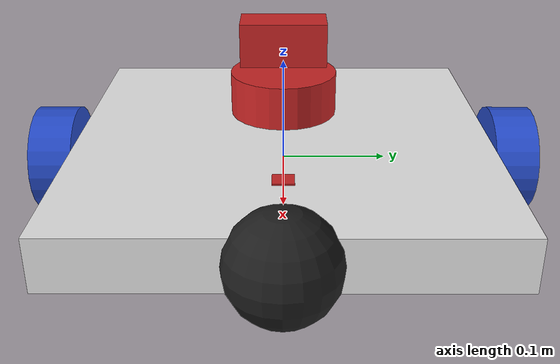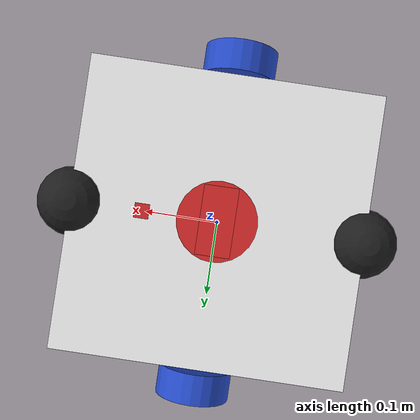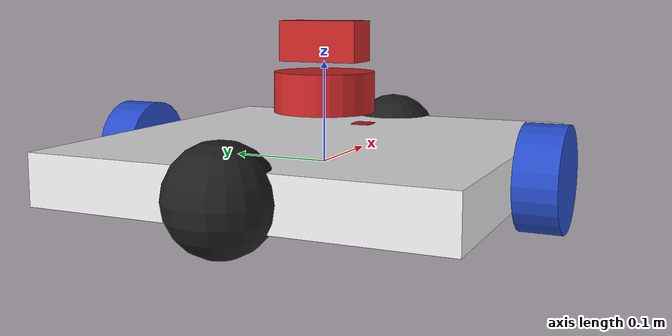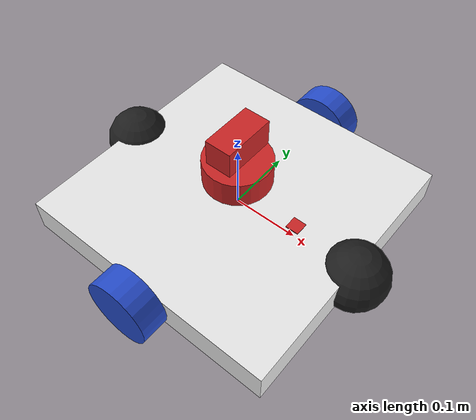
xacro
<?xml version="1.0"?>
<robot xmlns:xacro="http://www.ros.org/wiki/xacro" name="zulu_robot">

    <!-- Example link -->
    <xacro:include filename="properties.xacro"/>
    <xacro:include filename="robot_core.xacro"/>

    <!-- Lidar sensor -->
    <xacro:include filename="lidar.xacro"/>

    <!-- IMU sensor -->
    <xacro:include filename="imu.xacro"/>

    <!-- Depth camera sensor -->
    <xacro:include filename="depth_camera.xacro"/>

    <!-- ros2_control -->
    <xacro:include filename="ros2_control.xacro"/>

</robot>

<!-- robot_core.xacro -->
<robot xmlns:xacro="http://www.ros.org/wiki/xacro">

    <!-- Example link -->
    <xacro:include filename="inertial_macros.xacro"/>

    <xacro:property name="rad_w" value="0.05"/>
    <xacro:property name="le_w" value="0.04"/>
    <xacro:property name="ly" value="0.4"/>
    <xacro:property name="lx" value="0.4"/>
    <xacro:property name="lz" value="0.05"/>

    <!-- Example link -->
    <link name="base_link">
    </link>

    <joint name="base_link_joint" type="fixed">
        <parent link="base_link"/>
        <child link="chassis"/>
        <origin xyz="0 0 0"/>
    </joint>

    <!-- chassis link -->
    <link name="chassis">
        <visual>
            <origin xyz="0 0 0"/>
            <geometry>
                <box size="${lx} ${ly} ${lz}"/>
            </geometry>
            <material name="white"/>
        </visual>
        <collision>
            <origin xyz="0 0 0"/>
            <geometry>
               <box size="${lx} ${ly} ${lz}"/>
            </geometry>
        </collision>
        <xacro:inertial_box mass="5.0" x="${lx}" y="${ly}" z="${lz}">
            <origin xyz="0 0 0" rpy="0 0 0"/>
        </xacro:inertial_box>
    </link>

    <!-- left wheel joint -->
    <joint name="left_wheel_joint" type="continuous">
        <parent link="chassis"/>
        <child link="left_wheel"/>
        <origin xyz="0 ${ly/2+le_w/2} 0.0" rpy="-${pi/2} 0 0"/>
        <axis xyz="0 0 1"/>
        <dynamics damping="0.2" friction="0.0"/>
    </joint>

    <!-- left wheel link -->
    <link name="left_wheel">
        <visual>
            <geometry>
                <cylinder radius="${rad_w}" length="${le_w}"/>
            </geometry>
            <material name="blue"/>
        </visual>
        <collision>
            <geometry>
                  <sphere radius="${rad_w}" />
            </geometry>
            <surface>
                <friction>
                    <ode>
                        <mu>1.0</mu>
                        <mu2>2.0</mu2>
                    </ode>
                </friction>
            </surface>
        </collision>
        <xacro:inertial_cylinder mass="0.1" length="${le_w}" radius="${rad_w}">
            <origin xyz="0 0 0" rpy="0 0 0"/>
        </xacro:inertial_cylinder>
    </link>

    <!-- right wheel joint -->
    <joint name="right_wheel_joint" type="continuous">
        <parent link="chassis"/>
        <child link="right_wheel"/>
        <origin xyz="0 -${ly/2+le_w/2} 0.0" rpy="${pi/2} 0 0"/>
        <axis xyz="0 0 -1"/>
        <dynamics damping="0.2" friction="0.0"/>
    </joint>

    <!-- right wheel link -->
    <link name="right_wheel">
        <visual>
            <geometry>
                <cylinder radius="${rad_w}" length="${le_w}"/>
            </geometry>
            <material name="blue"/>
        </visual>
        <collision>
            <geometry>
                  <sphere radius="${rad_w}" />
            </geometry>
            <surface>
                <friction>
                    <ode>
                        <mu>1.0</mu>
                        <mu2>2.0</mu2>
                    </ode>
                </friction>
            </surface>
        </collision>
        <xacro:inertial_cylinder mass="0.1" length="${le_w}" radius="${rad_w}">
            <origin xyz="0 0 0" rpy="0 0 0"/>
        </xacro:inertial_cylinder>
    </link>

    <!-- caster wheel joint -->
    <joint name="caster_front_wheel_joint" type="fixed">
        <parent link="chassis"/>
        <child link="caster_front_wheel"/>
        <origin xyz="${lx/2} 0 0.0"/>
    </joint>

    <!-- left wheel link -->
    <link name="caster_front_wheel">
        <visual>
            <geometry>
                <sphere radius="0.049"/>
            </geometry>
            <material name="black"/>
        </visual>
        <collision>
            <geometry>
                <sphere radius="0.049"/>
            </geometry>
            <surface>
                <friction>
                <ode>
                    <mu>0.01</mu>
                    <mu2>0.01</mu2>
                </ode>
                </friction>
            </surface>
        </collision>
        <xacro:inertial_sphere mass="0.1" radius="0.049">
            <origin xyz="0 0 0" rpy="0 0 0"/>
        </xacro:inertial_sphere>
    </link>

     <!-- caster wheel joint -->
    <joint name="caster_rear_wheel_joint" type="fixed">
        <parent link="chassis"/>
        <child link="caster_rear_wheel"/>
        <origin xyz="${-lx/2} 0 0.0"/>
    </joint>

    <!-- left wheel link -->
    <link name="caster_rear_wheel">
        <visual>
            <geometry>
                <sphere radius="0.049"/>
            </geometry>
            <material name="black"/>
        </visual>
        <collision>
            <geometry>
                <sphere radius="0.049"/>
            </geometry>
            <surface>
                <friction>
                <ode>
                    <mu>0.01</mu>
                    <mu2>0.01</mu2>
                </ode>
                </friction>
            </surface>
        </collision>
        <xacro:inertial_sphere mass="0.1" radius="0.049">
            <origin xyz="0 0 0" rpy="0 0 0"/>
        </xacro:inertial_sphere>
    </link>

</robot>

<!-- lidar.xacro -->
<robot xmlns:xacro="http://www.ros.org/wiki/xacro" >

    <!-- Lidar link -->
    <link name="lidar_link">
         <visual>
            <geometry>
                <cylinder radius="${rad_w}" length="${le_w}"/>
            </geometry>
            <material name="red"/>
        </visual>
        <collision>
            <geometry>
                <cylinder radius="${rad_w}" length="${le_w}"/>
            </geometry>
        </collision>
        <xacro:inertial_cylinder mass="0.1" length="${le_w}" radius="${rad_w}">
            <origin xyz="0 0 0" rpy="0 0 0"/>
        </xacro:inertial_cylinder>
    </link>

    <joint name="lidar_chassis_joint" type="fixed">
        <parent link="chassis"/>
        <child link="lidar_link"/>
        <origin xyz="0 0 ${le_w/2+lz}" rpy="0 0 0"/>
    </joint>

    <gazebo reference="lidar_link">
    <sensor name="lidar" type="gpu_lidar">
        <always_on>true</always_on>
        <update_rate>10</update_rate>
        <visualize>true</visualize>
        <topic>scan</topic>
        <gz_frame_id>lidar_link</gz_frame_id>

        <lidar>
        <scan>
            <horizontal>
            <samples>720</samples>
            <min_angle>-3.14159</min_angle>
            <max_angle>3.14159</max_angle>
            </horizontal>
        </scan>
        <range>
            <min>0.12</min>
            <max>12.0</max>
        </range>
        </lidar>
    </sensor>
    </gazebo>

</robot>

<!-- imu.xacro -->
<robot xmlns:xacro="http://www.ros.org/wiki/xacro" >

    <!-- imu link -->
    <link name="imu_link">
         <visual>
            <geometry>
                <box size="${lx*0.05} ${ly*0.05} ${lz*0.05}"/>
            </geometry>
            <material name="red"/>
        </visual>
        <collision>
            <geometry>
                <box size="${lx*0.05} ${ly*0.05} ${lz*0.05}"/>
            </geometry>
        </collision>
        <xacro:inertial_box mass="0.01" x="${lx*0.05}" y="${ly*0.05}" z="${lz*0.05}">
            <origin xyz="0 0 0" rpy="0 0 0"/>
        </xacro:inertial_box>
    </link>

    <joint name="imu_chassis_joint" type="fixed">
        <parent link="chassis"/>
        <child link="imu_link"/>
        <origin xyz="${lx/2-0.049*2} 0 ${lz/2}" rpy="0 0 0"/>
    </joint>

    <gazebo reference="imu_link">
    <sensor name="imu_sensor" type="imu">
        <always_on>true</always_on>
        <update_rate>100</update_rate>
        <visualize>true</visualize>
        <topic>imu</topic>
        <gz_frame_id>imu_link</gz_frame_id>
        <plugin filename="libgz-sim-imu-system.so" name="gz::sim::systems::Imu">
        </plugin>
    </sensor>
    </gazebo>

</robot>

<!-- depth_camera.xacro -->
<robot xmlns:xacro="http://www.ros.org/wiki/xacro" >

    <!-- Depth camera link -->
    <link name="camera_link">
         <visual>
            <geometry>
                <box size="${lx*0.1} ${ly*0.2} ${le_w}"/>
            </geometry>
            <material name="red"/>
        </visual>
        <collision>
            <geometry>
                <box size="${lx*0.1} ${ly*0.2} ${le_w}"/>
            </geometry>
        </collision>
        <xacro:inertial_box mass="0.1" x="${lx*0.1}" y="${ly*0.2}" z="${le_w}">
            <origin xyz="0 0 0" rpy="0 0 0"/>
        </xacro:inertial_box>
    </link>

    <joint name="camera_chassis_joint" type="fixed">
        <parent link="chassis"/>
        <child link="camera_link"/>
        <origin xyz="0 0 ${3*le_w/2+lz*1.2}" rpy="0 0 0"/>
    </joint>

    <gazebo reference="camera_link">
    <sensor name="camera" type="depth_camera">
        <always_on>true</always_on>
        <update_rate>10</update_rate>
        <visualize>true</visualize>
        <topic>camera</topic>
        <gz_frame_id>camera_link</gz_frame_id>

        <camera>
            <horizontal_fov>1.047</horizontal_fov>
            <image>
                <width>640</width>
                <height>480</height>
                <format>R8G8B8</format>
            </image>
            <clip>
                <near>0.1</near>
                <far>10.0</far>
            </clip>
        </camera>

    </sensor>
    </gazebo>

</robot>
